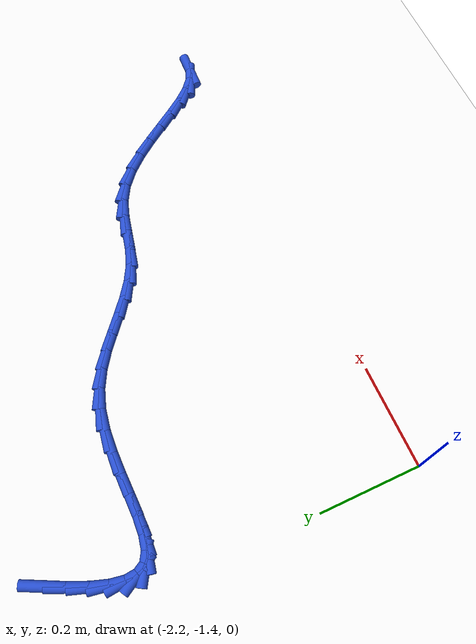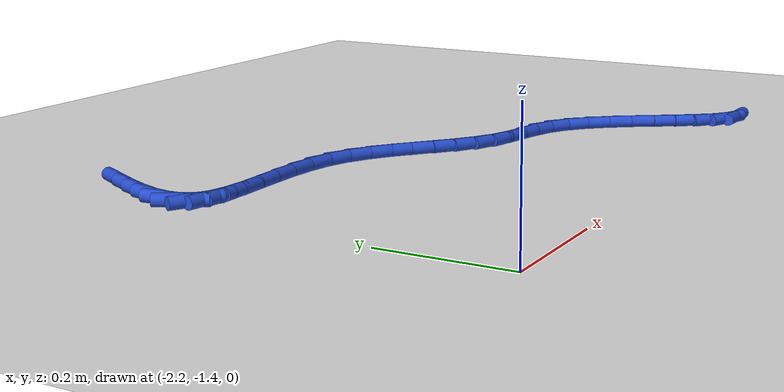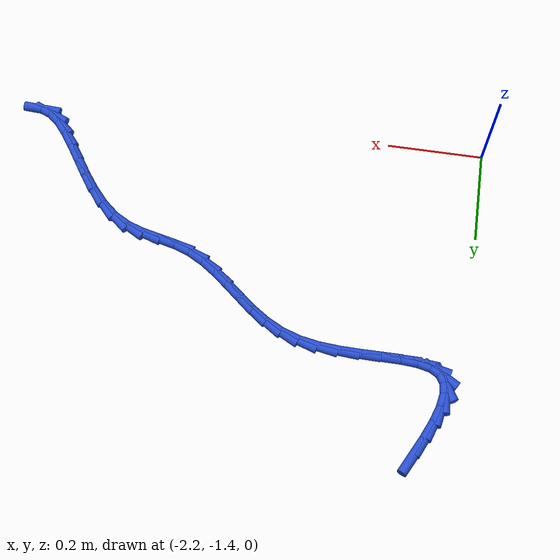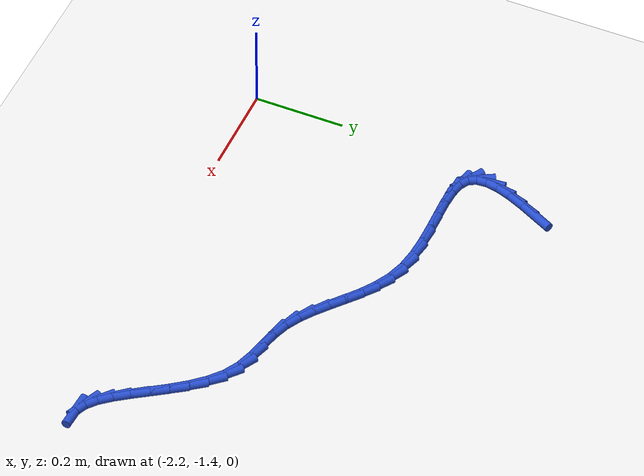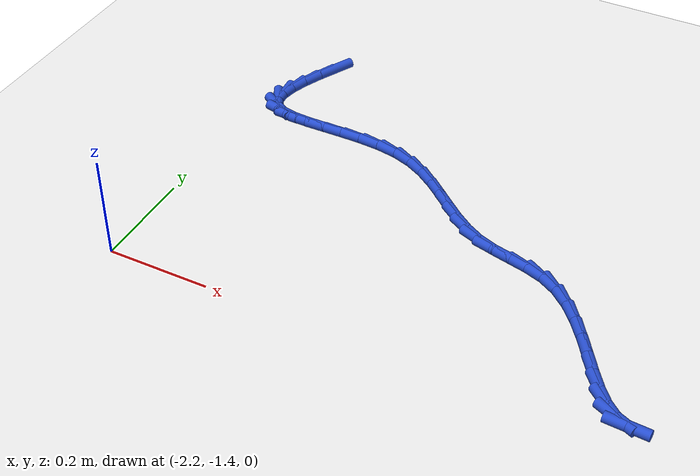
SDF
<sdf version="1.6">
 <world name="default">
  <model name="ground_plane">
   <static>1</static>
   <link name="link">
    <collision name="collision">
     <geometry><plane><normal>0 0 1</normal><size>100 100</size></plane></geometry>
     <surface><friction><ode><mu>100</mu><mu2>50</mu2></ode></friction></surface>
    </collision>
    <visual name="visual">
     <cast_shadows>0</cast_shadows>
     <geometry><plane><normal>0 0 1</normal><size>100 100</size></plane></geometry>
     <material>
      <script><uri>file://media/materials/scripts/gazebo.material</uri><name>Gazebo/WhiteGlow</name></script>
     </material>
    </visual>
   </link>
  </model>
  <model name="line">
   <link name="link_126">
    <pose>-2.1123072639124603 -0.7194644204461931 0.01 0 1.57 1.1055848445241396</pose>
    <collision name="collision">
     <geometry><cylinder><radius>0.01</radius><length>0.08</length></cylinder></geometry>
    </collision>
    <visual name="visual">
     <material>
      <script><name>Gazebo/Blue</name><uri>file://media/materials/scripts/gazebo.material</uri></script>
     </material>
     <geometry><cylinder><radius>0.01</radius><length>0.08</length></cylinder></geometry>
    </visual>
   </link>
   <link name="link_127">
    <pose>-2.1313203604031123 -0.7573424064934954 0.01 0 1.57 1.157103431123556</pose>
    <collision name="collision">
     <geometry><cylinder><radius>0.01</radius><length>0.08</length></cylinder></geometry>
    </collision>
    <visual name="visual">
     <material>
      <script><name>Gazebo/Blue</name><uri>file://media/materials/scripts/gazebo.material</uri></script>
     </material>
     <geometry><cylinder><radius>0.01</radius><length>0.08</length></cylinder></geometry>
    </visual>
   </link>
   <link name="link_128">
    <pose>-2.146685702863743 -0.7923408919612356 0.01 0 1.57 1.2441353207749186</pose>
    <collision name="collision">
     <geometry><cylinder><radius>0.01</radius><length>0.08</length></cylinder></geometry>
    </collision>
    <visual name="visual">
     <material>
      <script><name>Gazebo/Blue</name><uri>file://media/materials/scripts/gazebo.material</uri></script>
     </material>
     <geometry><cylinder><radius>0.01</radius><length>0.08</length></cylinder></geometry>
    </visual>
   </link>
   <link name="link_129">
    <pose>-2.1573500270143278 -0.8238177961711168 0.01 0 1.57 1.3929283074364949</pose>
    <collision name="collision">
     <geometry><cylinder><radius>0.01</radius><length>0.08</length></cylinder></geometry>
    </collision>
    <visual name="visual">
     <material>
      <script><name>Gazebo/Blue</name><uri>file://media/materials/scripts/gazebo.material</uri></script>
     </material>
     <geometry><cylinder><radius>0.01</radius><length>0.08</length></cylinder></geometry>
    </visual>
   </link>
   <link name="link_130">
    <pose>-2.1622600685748448 -0.8511310384448442 0.01 0 1.57 -1.4866897418189247</pose>
    <collision name="collision">
     <geometry><cylinder><radius>0.01</radius><length>0.08</length></cylinder></geometry>
    </collision>
    <visual name="visual">
     <material>
      <script><name>Gazebo/Blue</name><uri>file://media/materials/scripts/gazebo.material</uri></script>
     </material>
     <geometry><cylinder><radius>0.01</radius><length>0.08</length></cylinder></geometry>
    </visual>
   </link>
   <link name="link_131">
    <pose>-2.1603625632652688 -0.8736385381041211 0.01 0 1.57 -1.0512115296300881</pose>
    <collision name="collision">
     <geometry><cylinder><radius>0.01</radius><length>0.08</length></cylinder></geometry>
    </collision>
    <visual name="visual">
     <material>
      <script><name>Gazebo/Blue</name><uri>file://media/materials/scripts/gazebo.material</uri></script>
     </material>
     <geometry><cylinder><radius>0.01</radius><length>0.08</length></cylinder></geometry>
    </visual>
   </link>
   <link name="link_132">
    <pose>-2.1506042468055773 -0.8906982144706508 0.01 0 1.57 -0.538831277537482</pose>
    <collision name="collision">
     <geometry><cylinder><radius>0.01</radius><length>0.08</length></cylinder></geometry>
    </collision>
    <visual name="visual">
     <material>
      <script><name>Gazebo/Blue</name><uri>file://media/materials/scripts/gazebo.material</uri></script>
     </material>
     <geometry><cylinder><radius>0.01</radius><length>0.08</length></cylinder></geometry>
    </visual>
   </link>
   <link name="link_133">
    <pose>-2.1320698798671316 -0.901778838797502 0.01 0 1.57 -0.21567060744541</pose>
    <collision name="collision">
     <geometry><cylinder><radius>0.01</radius><length>0.08</length></cylinder></geometry>
    </collision>
    <visual name="visual">
     <material>
      <script><name>Gazebo/Blue</name><uri>file://media/materials/scripts/gazebo.material</uri></script>
     </material>
     <geometry><cylinder><radius>0.01</radius><length>0.08</length></cylinder></geometry>
    </visual>
   </link>
   <link name="link_134">
    <pose>-2.1054224487459225 -0.9076167021366013 0.01 0 1.57 -0.06455557776659639</pose>
    <collision name="collision">
     <geometry><cylinder><radius>0.01</radius><length>0.08</length></cylinder></geometry>
    </collision>
    <visual name="visual">
     <material>
      <script><name>Gazebo/Blue</name><uri>file://media/materials/scripts/gazebo.material</uri></script>
     </material>
     <geometry><cylinder><radius>0.01</radius><length>0.08</length></cylinder></geometry>
    </visual>
   </link>
   <link name="link_135">
    <pose>-2.0723307924003582 -0.9097559256399942 0.01 0 1.57 5.99799989588952e-05</pose>
    <collision name="collision">
     <geometry><cylinder><radius>0.01</radius><length>0.08</length></cylinder></geometry>
    </collision>
    <visual name="visual">
     <material>
      <script><name>Gazebo/Blue</name><uri>file://media/materials/scripts/gazebo.material</uri></script>
     </material>
     <geometry><cylinder><radius>0.01</radius><length>0.08</length></cylinder></geometry>
    </visual>
   </link>
   <link name="link_136">
    <pose>-2.034479967454044 -0.9097536553475506 0.01 0 1.57 0.014333018478421094</pose>
    <collision name="collision">
     <geometry><cylinder><radius>0.01</radius><length>0.08</length></cylinder></geometry>
    </collision>
    <visual name="visual">
     <material>
      <script><name>Gazebo/Blue</name><uri>file://media/materials/scripts/gazebo.material</uri></script>
     </material>
     <geometry><cylinder><radius>0.01</radius><length>0.08</length></cylinder></geometry>
    </visual>
   </link>
   <link name="link_137">
    <pose>-1.99355503053058 -0.9091670372991401 0.01 0 1.57 -0.009126284075853995</pose>
    <collision name="collision">
     <geometry><cylinder><radius>0.01</radius><length>0.08</length></cylinder></geometry>
    </collision>
    <visual name="visual">
     <material>
      <script><name>Gazebo/Blue</name><uri>file://media/materials/scripts/gazebo.material</uri></script>
     </material>
     <geometry><cylinder><radius>0.01</radius><length>0.08</length></cylinder></geometry>
    </visual>
   </link>
   <link name="link_138">
    <pose>-1.9512410382535703 -0.9095532175346328 0.01 0 1.57 -0.06929070209935223</pose>
    <collision name="collision">
     <geometry><cylinder><radius>0.01</radius><length>0.08</length></cylinder></geometry>
    </collision>
    <visual name="visual">
     <material>
      <script><name>Gazebo/Blue</name><uri>file://media/materials/scripts/gazebo.material</uri></script>
     </material>
     <geometry><cylinder><radius>0.01</radius><length>0.08</length></cylinder></geometry>
    </visual>
   </link>
   <link name="link_139">
    <pose>-1.9092230472466154 -0.9124693420938986 0.01 0 1.57 -0.17316694189014412</pose>
    <collision name="collision">
     <geometry><cylinder><radius>0.01</radius><length>0.08</length></cylinder></geometry>
    </collision>
    <visual name="visual">
     <material>
      <script><name>Gazebo/Blue</name><uri>file://media/materials/scripts/gazebo.material</uri></script>
     </material>
     <geometry><cylinder><radius>0.01</radius><length>0.08</length></cylinder></geometry>
    </visual>
   </link>
   <link name="link_140">
    <pose>-1.8691861141333188 -0.9194725570168067 0.01 0 1.57 -0.3285450116365198</pose>
    <collision name="collision">
     <geometry><cylinder><radius>0.01</radius><length>0.08</length></cylinder></geometry>
    </collision>
    <visual name="visual">
     <material>
      <script><name>Gazebo/Blue</name><uri>file://media/materials/scripts/gazebo.material</uri></script>
     </material>
     <geometry><cylinder><radius>0.01</radius><length>0.08</length></cylinder></geometry>
    </visual>
   </link>
   <link name="link_141">
    <pose>-1.8326511022481673 -0.9319273419765325 0.01 0 1.57 -0.48586641842094624</pose>
    <collision name="collision">
     <geometry><cylinder><radius>0.01</radius><length>0.08</length></cylinder></geometry>
    </collision>
    <visual name="visual">
     <material>
      <script><name>Gazebo/Blue</name><uri>file://media/materials/scripts/gazebo.material</uri></script>
     </material>
     <geometry><cylinder><radius>0.01</radius><length>0.08</length></cylinder></geometry>
    </visual>
   </link>
   <link name="link_142">
    <pose>-1.7995934544540715 -0.9493847618052469 0.01 0 1.57 -0.6040679495857468</pose>
    <collision name="collision">
     <geometry><cylinder><radius>0.01</radius><length>0.08</length></cylinder></geometry>
    </collision>
    <visual name="visual">
     <material>
      <script><name>Gazebo/Blue</name><uri>file://media/materials/scripts/gazebo.material</uri></script>
     </material>
     <geometry><cylinder><radius>0.01</radius><length>0.08</length></cylinder></geometry>
    </visual>
   </link>
   <link name="link_143">
    <pose>-1.7691407283347687 -0.9704009626207681 0.01 0 1.57 -0.6776570622058353</pose>
    <collision name="collision">
     <geometry><cylinder><radius>0.01</radius><length>0.08</length></cylinder></geometry>
    </collision>
    <visual name="visual">
     <material>
      <script><name>Gazebo/Blue</name><uri>file://media/materials/scripts/gazebo.material</uri></script>
     </material>
     <geometry><cylinder><radius>0.01</radius><length>0.08</length></cylinder></geometry>
    </visual>
   </link>
   <link name="link_144">
    <pose>-1.7404117583681156 -0.9935218547442728 0.01 0 1.57 -0.7059094984214125</pose>
    <collision name="collision">
     <geometry><cylinder><radius>0.01</radius><length>0.08</length></cylinder></geometry>
    </collision>
    <visual name="visual">
     <material>
      <script><name>Gazebo/Blue</name><uri>file://media/materials/scripts/gazebo.material</uri></script>
     </material>
     <geometry><cylinder><radius>0.01</radius><length>0.08</length></cylinder></geometry>
    </visual>
   </link>
   <link name="link_145">
    <pose>-1.7125253790319677 -1.01729334849694 0.01 0 1.57 -0.6883049271386832</pose>
    <collision name="collision">
     <geometry><cylinder><radius>0.01</radius><length>0.08</length></cylinder></geometry>
    </collision>
    <visual name="visual">
     <material>
      <script><name>Gazebo/Blue</name><uri>file://media/materials/scripts/gazebo.material</uri></script>
     </material>
     <geometry><cylinder><radius>0.01</radius><length>0.08</length></cylinder></geometry>
    </visual>
   </link>
   <link name="link_146">
    <pose>-1.6846004248041797 -1.0402613541999484 0.01 0 1.57 -0.6227031913298263</pose>
    <collision name="collision">
     <geometry><cylinder><radius>0.01</radius><length>0.08</length></cylinder></geometry>
    </collision>
    <visual name="visual">
     <material>
      <script><name>Gazebo/Blue</name><uri>file://media/materials/scripts/gazebo.material</uri></script>
     </material>
     <geometry><cylinder><radius>0.01</radius><length>0.08</length></cylinder></geometry>
    </visual>
   </link>
   <link name="link_147">
    <pose>-1.6557557301626076 -1.060971782174476 0.01 0 1.57 -0.5064356580559233</pose>
    <collision name="collision">
     <geometry><cylinder><radius>0.01</radius><length>0.08</length></cylinder></geometry>
    </collision>
    <visual name="visual">
     <material>
      <script><name>Gazebo/Blue</name><uri>file://media/materials/scripts/gazebo.material</uri></script>
     </material>
     <geometry><cylinder><radius>0.01</radius><length>0.08</length></cylinder></geometry>
    </visual>
   </link>
   <link name="link_148">
    <pose>-1.6251101295851054 -1.0779705427417012 0.01 0 1.57 -0.3464546919704303</pose>
    <collision name="collision">
     <geometry><cylinder><radius>0.01</radius><length>0.08</length></cylinder></geometry>
    </collision>
    <visual name="visual">
     <material>
      <script><name>Gazebo/Blue</name><uri>file://media/materials/scripts/gazebo.material</uri></script>
     </material>
     <geometry><cylinder><radius>0.01</radius><length>0.08</length></cylinder></geometry>
    </visual>
   </link>
   <link name="link_149">
    <pose>-1.591867490702704 -1.0899716661084875 0.01 0 1.57 -0.2323787247835794</pose>
    <collision name="collision">
     <geometry><cylinder><radius>0.01</radius><length>0.08</length></cylinder></geometry>
    </collision>
    <visual name="visual">
     <material>
      <script><name>Gazebo/Blue</name><uri>file://media/materials/scripts/gazebo.material</uri></script>
     </material>
     <geometry><cylinder><radius>0.01</radius><length>0.08</length></cylinder></geometry>
    </visual>
   </link>
   <link name="link_150">
    <pose>-1.5565653784734907 -1.0983260486191402 0.01 0 1.57 -0.224111110039333</pose>
    <collision name="collision">
     <geometry><cylinder><radius>0.01</radius><length>0.08</length></cylinder></geometry>
    </collision>
    <visual name="visual">
     <material>
      <script><name>Gazebo/Blue</name><uri>file://media/materials/scripts/gazebo.material</uri></script>
     </material>
     <geometry><cylinder><radius>0.01</radius><length>0.08</length></cylinder></geometry>
    </visual>
   </link>
   <link name="link_151">
    <pose>-1.5208003511774784 -1.1064783327578893 0.01 0 1.57 -0.31962768405743025</pose>
    <collision name="collision">
     <geometry><cylinder><radius>0.01</radius><length>0.08</length></cylinder></geometry>
    </collision>
    <visual name="visual">
     <material>
      <script><name>Gazebo/Blue</name><uri>file://media/materials/scripts/gazebo.material</uri></script>
     </material>
     <geometry><cylinder><radius>0.01</radius><length>0.08</length></cylinder></geometry>
    </visual>
   </link>
   <link name="link_152">
    <pose>-1.4861981416929977 -1.1179308423950052 0.01 0 1.57 -0.5140510236727268</pose>
    <collision name="collision">
     <geometry><cylinder><radius>0.01</radius><length>0.08</length></cylinder></geometry>
    </collision>
    <visual name="visual">
     <material>
      <script><name>Gazebo/Blue</name><uri>file://media/materials/scripts/gazebo.material</uri></script>
     </material>
     <geometry><cylinder><radius>0.01</radius><length>0.08</length></cylinder></geometry>
    </visual>
   </link>
   <link name="link_153">
    <pose>-1.4542919513141765 -1.1359479280020806 0.01 0 1.57 -0.709672396090273</pose>
    <collision name="collision">
     <geometry><cylinder><radius>0.01</radius><length>0.08</length></cylinder></geometry>
    </collision>
    <visual name="visual">
     <material>
      <script><name>Gazebo/Blue</name><uri>file://media/materials/scripts/gazebo.material</uri></script>
     </material>
     <geometry><cylinder><radius>0.01</radius><length>0.08</length></cylinder></geometry>
    </visual>
   </link>
   <link name="link_154">
    <pose>-1.4254278925685453 -1.1607409765600032 0.01 0 1.57 -0.8454974414305688</pose>
    <collision name="collision">
     <geometry><cylinder><radius>0.01</radius><length>0.08</length></cylinder></geometry>
    </collision>
    <visual name="visual">
     <material>
      <script><name>Gazebo/Blue</name><uri>file://media/materials/scripts/gazebo.material</uri></script>
     </material>
     <geometry><cylinder><radius>0.01</radius><length>0.08</length></cylinder></geometry>
    </visual>
   </link>
   <link name="link_155">
    <pose>-1.399129762856788 -1.1904065390485365 0.01 0 1.57 -0.9316154276830919</pose>
    <collision name="collision">
     <geometry><cylinder><radius>0.01</radius><length>0.08</length></cylinder></geometry>
    </collision>
    <visual name="visual">
     <material>
      <script><name>Gazebo/Blue</name><uri>file://media/materials/scripts/gazebo.material</uri></script>
     </material>
     <geometry><cylinder><radius>0.01</radius><length>0.08</length></cylinder></geometry>
    </visual>
   </link>
   <link name="link_156">
    <pose>-1.3749048793705851 -1.22299878252653 0.01 0 1.57 -0.9774051829017328</pose>
    <collision name="collision">
     <geometry><cylinder><radius>0.01</radius><length>0.08</length></cylinder></geometry>
    </collision>
    <visual name="visual">
     <material>
      <script><name>Gazebo/Blue</name><uri>file://media/materials/scripts/gazebo.material</uri></script>
     </material>
     <geometry><cylinder><radius>0.01</radius><length>0.08</length></cylinder></geometry>
    </visual>
   </link>
   <link name="link_157">
    <pose>-1.3522605593016197 -1.2565718740528318 0.01 0 1.57 -0.9866741192421605</pose>
    <collision name="collision">
     <geometry><cylinder><radius>0.01</radius><length>0.08</length></cylinder></geometry>
    </collision>
    <visual name="visual">
     <material>
      <script><name>Gazebo/Blue</name><uri>file://media/materials/scripts/gazebo.material</uri></script>
     </material>
     <geometry><cylinder><radius>0.01</radius><length>0.08</length></cylinder></geometry>
    </visual>
   </link>
   <link name="link_158">
    <pose>-1.3307041198415728 -1.2891799806862922 0.01 0 1.57 -0.9561682212145614</pose>
    <collision name="collision">
     <geometry><cylinder><radius>0.01</radius><length>0.08</length></cylinder></geometry>
    </collision>
    <visual name="visual">
     <material>
      <script><name>Gazebo/Blue</name><uri>file://media/materials/scripts/gazebo.material</uri></script>
     </material>
     <geometry><cylinder><radius>0.01</radius><length>0.08</length></cylinder></geometry>
    </visual>
   </link>
   <link name="link_159">
    <pose>-1.3097428781821263 -1.31887726948576 0.01 0 1.57 -0.872311405966428</pose>
    <collision name="collision">
     <geometry><cylinder><radius>0.01</radius><length>0.08</length></cylinder></geometry>
    </collision>
    <visual name="visual">
     <material>
      <script><name>Gazebo/Blue</name><uri>file://media/materials/scripts/gazebo.material</uri></script>
     </material>
     <geometry><cylinder><radius>0.01</radius><length>0.08</length></cylinder></geometry>
    </visual>
   </link>
   <link name="link_160">
    <pose>-1.2888841515149612 -1.3437179075100851 0.01 0 1.57 -0.7038542295975215</pose>
    <collision name="collision">
     <geometry><cylinder><radius>0.01</radius><length>0.08</length></cylinder></geometry>
    </collision>
    <visual name="visual">
     <material>
      <script><name>Gazebo/Blue</name><uri>file://media/materials/scripts/gazebo.material</uri></script>
     </material>
     <geometry><cylinder><radius>0.01</radius><length>0.08</length></cylinder></geometry>
    </visual>
   </link>
   <link name="link_161">
    <pose>-1.2676352570317597 -1.3617560618181157 0.01 0 1.57 -0.40816912124590116</pose>
    <collision name="collision">
     <geometry><cylinder><radius>0.01</radius><length>0.08</length></cylinder></geometry>
    </collision>
    <visual name="visual">
     <material>
      <script><name>Gazebo/Blue</name><uri>file://media/materials/scripts/gazebo.material</uri></script>
     </material>
     <geometry><cylinder><radius>0.01</radius><length>0.08</length></cylinder></geometry>
    </visual>
   </link>
   <link name="link_162">
    <pose>-1.2455483960505345 -1.371307661641236 0.01 0 1.57 -0.052437619945892716</pose>
    <collision name="collision">
     <geometry><cylinder><radius>0.01</radius><length>0.08</length></cylinder></geometry>
    </collision>
    <visual name="visual">
     <material>
      <script><name>Gazebo/Blue</name><uri>file://media/materials/scripts/gazebo.material</uri></script>
     </material>
     <geometry><cylinder><radius>0.01</radius><length>0.08</length></cylinder></geometry>
    </visual>
   </link>
  </model>
 </world>
</sdf>
